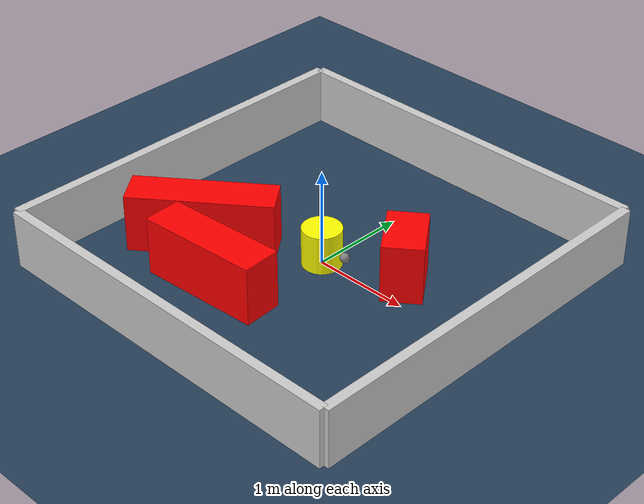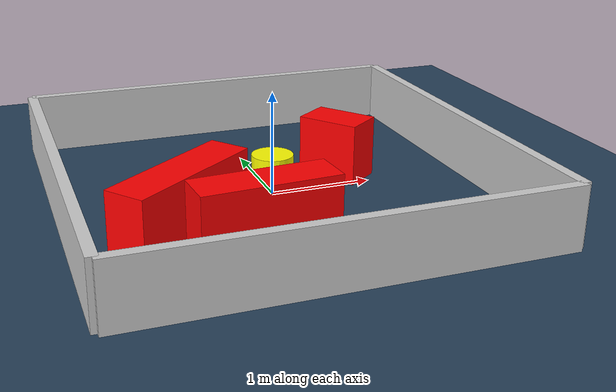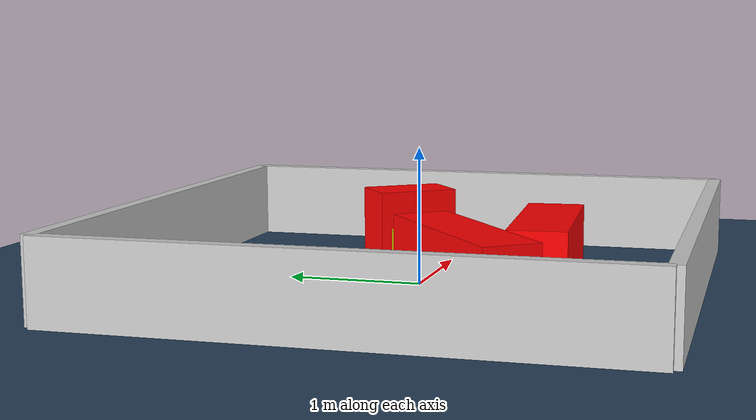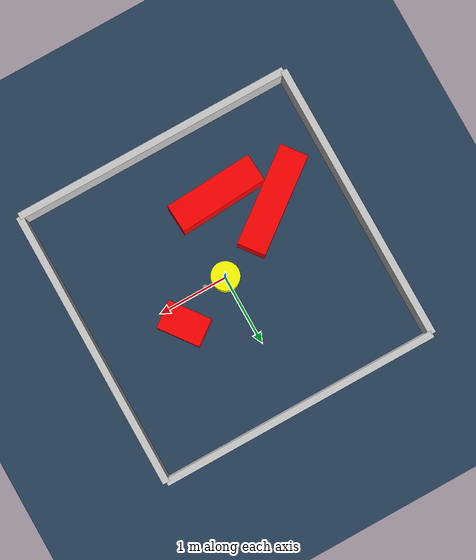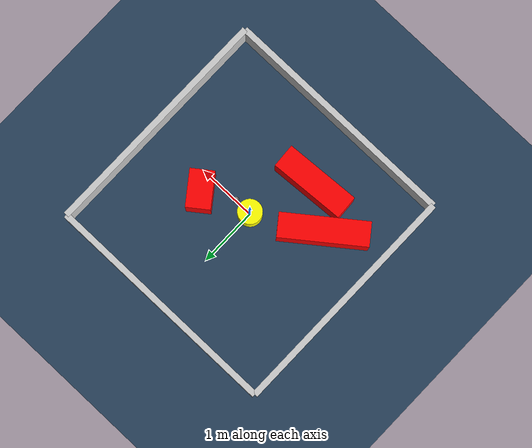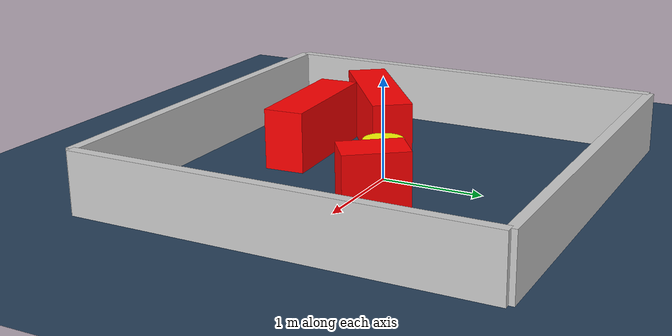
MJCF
<?xml version="1.0" ?>
<mujoco model="generated_environment">
  <option timestep="0.01" integrator="RK4" cone="elliptic"/>
  <default>
    <geom density="1"/>
  </default>
  <asset>
    <texture builtin="gradient" height="3072" rgb1="0.3 0.5 0.7" rgb2="0 0 0" type="skybox" width="512"/>
    <texture builtin="checker" height="300" mark="edge" markrgb="0.8 0.8 0.8" name="groundplane" rgb1="0.2 0.3 0.4" rgb2="0.1 0.2 0.3" type="2d" width="300"/>
    <material name="groundplane" reflectance="0.2" texrepeat="5 5" texture="groundplane" texuniform="true"/>
    <material name="robot" rgba="0.0 1.0 0.0 1"/>
  </asset>
  <worldbody>
    <light dir="0 0 -1" directional="true" pos="0 0 1.5"/>
    <geom condim="4" friction="1.0 0.005 0.001" material="groundplane" name="floor" size="0 0 0.05" type="plane"/>
    <body name="walls">
      <geom name="wall_1" condim="4" pos="-2.0 0.0 0.3" rgba="0.800000011920929 0.800000011920929 0.800000011920929 1.0" size="0.05 2.0 0.3" type="box"/>
      <geom name="wall_2" condim="4" pos="2.0 0.0 0.3" rgba="0.800000011920929 0.800000011920929 0.800000011920929 1.0" size="0.05 2.0 0.3" type="box"/>
      <geom name="wall_3" condim="4" pos="0.0 -2.0 0.3" rgba="0.800000011920929 0.800000011920929 0.800000011920929 1.0" size="2.0 0.05 0.3" type="box"/>
      <geom name="wall_4" condim="4" pos="0.0 2.0 0.3" rgba="0.800000011920929 0.800000011920929 0.800000011920929 1.0" size="2.0 0.05 0.3" type="box"/>
    </body>
    <body name="robot">
      <joint name="joint_x" type="slide" pos="0 0 0" axis="1 0 0"/>
      <joint name="joint_y" type="slide" pos="0 0 0" axis="0 1 0"/>
      <geom name="robot" type="sphere" pos="0.3 0.0 0.2" size="0.05" mass="5." friction="1.0 0.005 0.0001" condim="4" rgba="0.5 0.5 0.5 1.0"/>
      <site name="sensor_ball"/>
    </body>
    <body name="obstacle_movable_1">
      <geom name="obstacle_movable_1" condim="4" pos="0.0 0.0 0.2" euler="0 0 0.0" friction="1.0 0.005 0.001" rgba="1.0 1.0 0.0 1.0" size="0.2 0.2 0.0" type="cylinder" mass="0.1"/>
      <joint type="free"/>
    </body>
    <body name="obstacle_2_static">
      <geom name="obstacle_2_static" condim="4" pos="-0.41968763476233195 -1.0101360091592713 0.3" euler="0 0 3.6603289549220586" friction="1.0 0.005 0.001" rgba="1 0 0 1" size="0.6338577388154223 0.2 0.3" type="box"/>
    </body>
    <body name="obstacle_3_static">
      <geom name="obstacle_3_static" condim="4" pos="0.7851324585291843 0.28993321129539074 0.3" euler="0 0 126.83584984026083" friction="1.0 0.005 0.001" rgba="1 0 0 1" size="0.30723072878481095 0.2 0.3" type="box"/>
    </body>
    <body name="obstacle_4_static">
      <geom name="obstacle_4_static" condim="4" pos="-1.0324166990152537 -0.5692186309438947 0.3" euler="0 0 37.41612842251342" friction="1.0 0.005 0.001" rgba="1 0 0 1" size="0.7206930617234883 0.2 0.3" type="box"/>
    </body>
  </worldbody>
  <actuator>
    <motor name="actuator_x" joint="joint_x" gear="1" ctrlrange="-1 1"/>
    <motor name="actuator_y" joint="joint_y" gear="1" ctrlrange="-1 1"/>
  </actuator>
</mujoco>
